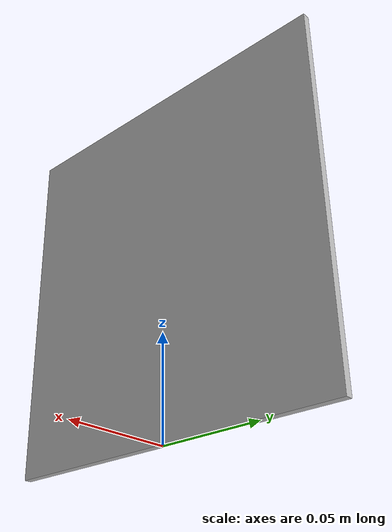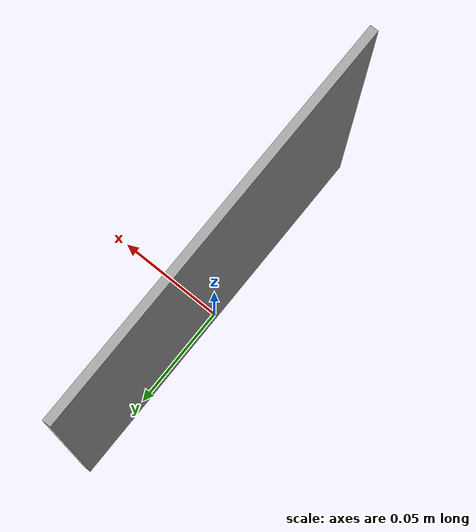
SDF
<?xml version="1.0" ?><sdf version="1.6">
  <model name="Marker8">
    <static>true</static>
    <link name="link">
      <visual name="visual">
        <geometry>
          <mesh>
            <uri>model://marker8/meshes/Marker8.dae</uri>
          <scale>0.352 0.352 0.352</scale></mesh>
        </geometry>
      </visual>
    </link>
  </model>
</sdf>
